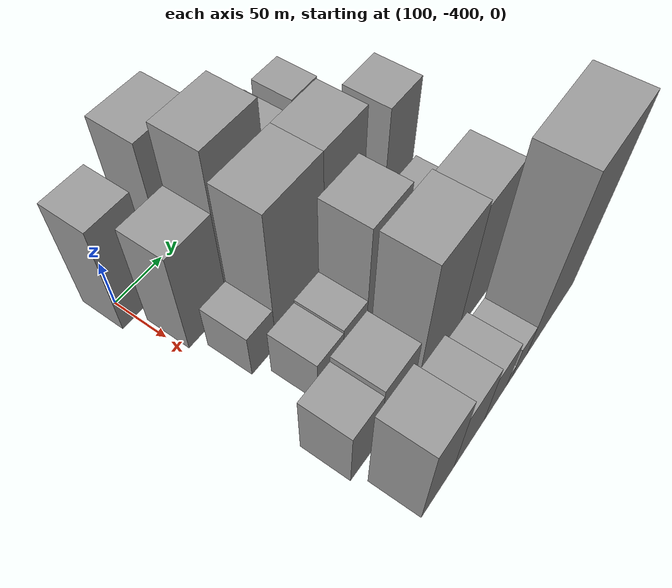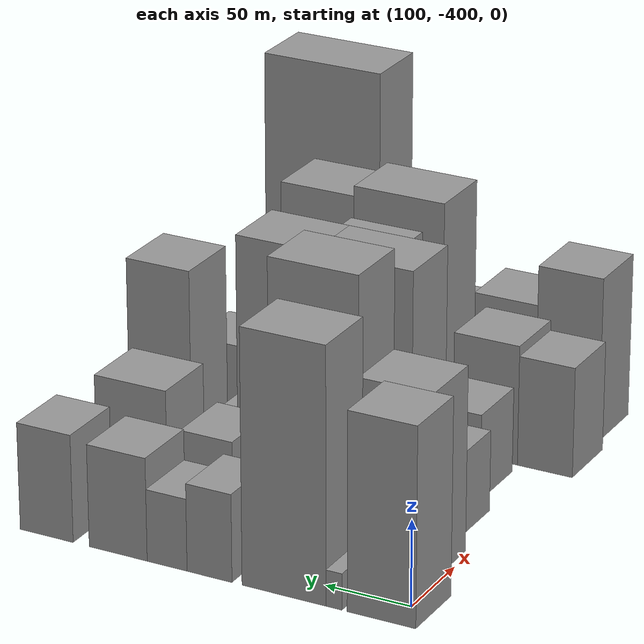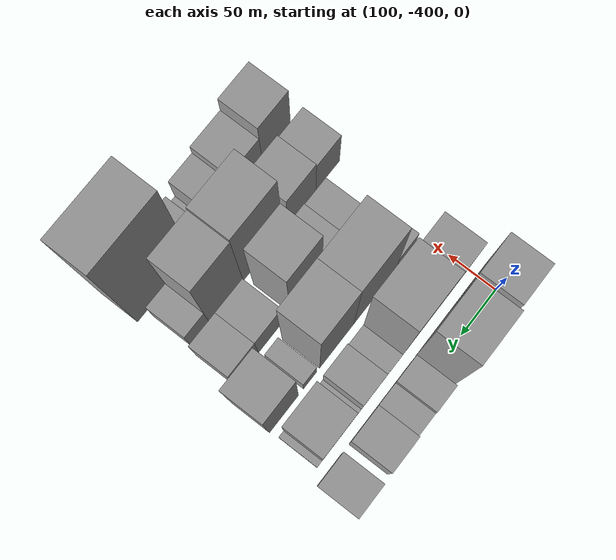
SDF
<sdf version="1.6">
 <world name="default">
  <model name="building_10">
   <static>1</static>
   <pose>100.0000 -393.0205 0 0.000000 0.000000 0.000000</pose>
   <link name="link">
    <pose>0 0 57.00 0 0 0</pose>
    <collision name="collision"><geometry><box><size>40.0000 39.4677 114.0000</size></box></geometry></collision>
    <visual name="visual">
     <cast_shadows>0</cast_shadows>
     <geometry><box><size>40.0000 39.4677 114.0000</size></box></geometry>
     <material>
      <script>
       <uri>model://grey_wall/materials/scripts</uri>
       <uri>model://grey_wall/materials/textures</uri>
       <name>vrc/grey_wall</name>
      </script>
     </material>
    </visual>
   </link>
  </model>
  <model name="building_11">
   <static>1</static>
   <pose>100.0000 -365.6072 0 0.000000 0.000000 0.000000</pose>
   <link name="link">
    <pose>0 0 10.50 0 0 0</pose>
    <collision name="collision"><geometry><box><size>40.0000 9.3589 21.0000</size></box></geometry></collision>
    <visual name="visual">
     <cast_shadows>0</cast_shadows>
     <geometry><box><size>40.0000 9.3589 21.0000</size></box></geometry>
     <material>
      <script>
       <uri>model://grey_wall/materials/scripts</uri>
       <uri>model://grey_wall/materials/textures</uri>
       <name>vrc/grey_wall</name>
      </script>
     </material>
    </visual>
   </link>
  </model>
  <model name="building_12">
   <static>1</static>
   <pose>100.0000 -336.2007 0 0.000000 0.000000 0.000000</pose>
   <link name="link">
    <pose>0 0 73.50 0 0 0</pose>
    <collision name="collision"><geometry><box><size>40.0000 49.4543 147.0000</size></box></geometry></collision>
    <visual name="visual">
     <cast_shadows>0</cast_shadows>
     <geometry><box><size>40.0000 49.4543 147.0000</size></box></geometry>
     <material>
      <script>
       <uri>model://grey_wall/materials/scripts</uri>
       <uri>model://grey_wall/materials/textures</uri>
       <name>vrc/grey_wall</name>
      </script>
     </material>
    </visual>
   </link>
  </model>
  <model name="building_13">
   <static>1</static>
   <pose>100.0000 -291.9677 0 0.000000 0.000000 0.000000</pose>
   <link name="link">
    <pose>0 0 25.50 0 0 0</pose>
    <collision name="collision"><geometry><box><size>40.0000 27.0116 51.0000</size></box></geometry></collision>
    <visual name="visual">
     <cast_shadows>0</cast_shadows>
     <geometry><box><size>40.0000 27.0116 51.0000</size></box></geometry>
     <material>
      <script>
       <uri>model://grey_wall/materials/scripts</uri>
       <uri>model://grey_wall/materials/textures</uri>
       <name>vrc/grey_wall</name>
      </script>
     </material>
    </visual>
   </link>
  </model>
  <model name="building_14">
   <static>1</static>
   <pose>100.0000 -266.3513 0 0.000000 0.000000 0.000000</pose>
   <link name="link">
    <pose>0 0 21.00 0 0 0</pose>
    <collision name="collision"><geometry><box><size>40.0000 24.2213 42.0000</size></box></geometry></collision>
    <visual name="visual">
     <cast_shadows>0</cast_shadows>
     <geometry><box><size>40.0000 24.2213 42.0000</size></box></geometry>
     <material>
      <script>
       <uri>model://grey_wall/materials/scripts</uri>
       <uri>model://grey_wall/materials/textures</uri>
       <name>vrc/grey_wall</name>
      </script>
     </material>
    </visual>
   </link>
  </model>
  <model name="building_15">
   <static>1</static>
   <pose>100.0000 -236.4188 0 0.000000 0.000000 0.000000</pose>
   <link name="link">
    <pose>0 0 30.00 0 0 0</pose>
    <collision name="collision"><geometry><box><size>40.0000 35.6436 60.0000</size></box></geometry></collision>
    <visual name="visual">
     <cast_shadows>0</cast_shadows>
     <geometry><box><size>40.0000 35.6436 60.0000</size></box></geometry>
     <material>
      <script>
       <uri>model://grey_wall/materials/scripts</uri>
       <uri>model://grey_wall/materials/textures</uri>
       <name>vrc/grey_wall</name>
      </script>
     </material>
    </visual>
   </link>
  </model>
  <model name="building_16">
   <static>1</static>
   <pose>100.0000 -192.0225 0 0.000000 0.000000 0.000000</pose>
   <link name="link">
    <pose>0 0 31.50 0 0 0</pose>
    <collision name="collision"><geometry><box><size>40.0000 33.1490 63.0000</size></box></geometry></collision>
    <visual name="visual">
     <cast_shadows>0</cast_shadows>
     <geometry><box><size>40.0000 33.1490 63.0000</size></box></geometry>
     <material>
      <script>
       <uri>model://grey_wall/materials/scripts</uri>
       <uri>model://grey_wall/materials/textures</uri>
       <name>vrc/grey_wall</name>
      </script>
     </material>
    </visual>
   </link>
  </model>
  <model name="building_55">
   <static>1</static>
   <pose>149.0000 -375.3087 0 0.000000 0.000000 0.000000</pose>
   <link name="link">
    <pose>0 0 54.00 0 0 0</pose>
    <collision name="collision"><geometry><box><size>40.0000 43.1898 108.0000</size></box></geometry></collision>
    <visual name="visual">
     <cast_shadows>0</cast_shadows>
     <geometry><box><size>40.0000 43.1898 108.0000</size></box></geometry>
     <material>
      <script>
       <uri>model://grey_wall/materials/scripts</uri>
       <uri>model://grey_wall/materials/textures</uri>
       <name>vrc/grey_wall</name>
      </script>
     </material>
    </visual>
   </link>
  </model>
  <model name="building_56">
   <static>1</static>
   <pose>149.0000 -327.1030 0 0.000000 0.000000 0.000000</pose>
   <link name="link">
    <pose>0 0 82.50 0 0 0</pose>
    <collision name="collision"><geometry><box><size>40.0000 53.2216 165.0000</size></box></geometry></collision>
    <visual name="visual">
     <cast_shadows>0</cast_shadows>
     <geometry><box><size>40.0000 53.2216 165.0000</size></box></geometry>
     <material>
      <script>
       <uri>model://grey_wall/materials/scripts</uri>
       <uri>model://grey_wall/materials/textures</uri>
       <name>vrc/grey_wall</name>
      </script>
     </material>
    </visual>
   </link>
  </model>
  <model name="building_57">
   <static>1</static>
   <pose>149.0000 -289.4607 0 0.000000 0.000000 0.000000</pose>
   <link name="link">
    <pose>0 0 19.50 0 0 0</pose>
    <collision name="collision"><geometry><box><size>40.0000 22.0631 39.0000</size></box></geometry></collision>
    <visual name="visual">
     <cast_shadows>0</cast_shadows>
     <geometry><box><size>40.0000 22.0631 39.0000</size></box></geometry>
     <material>
      <script>
       <uri>model://grey_wall/materials/scripts</uri>
       <uri>model://grey_wall/materials/textures</uri>
       <name>vrc/grey_wall</name>
      </script>
     </material>
    </visual>
   </link>
  </model>
  <model name="building_58">
   <static>1</static>
   <pose>149.0000 -262.5375 0 0.000000 0.000000 0.000000</pose>
   <link name="link">
    <pose>0 0 27.00 0 0 0</pose>
    <collision name="collision"><geometry><box><size>40.0000 31.7833 54.0000</size></box></geometry></collision>
    <visual name="visual">
     <cast_shadows>0</cast_shadows>
     <geometry><box><size>40.0000 31.7833 54.0000</size></box></geometry>
     <material>
      <script>
       <uri>model://grey_wall/materials/scripts</uri>
       <uri>model://grey_wall/materials/textures</uri>
       <name>vrc/grey_wall</name>
      </script>
     </material>
    </visual>
   </link>
  </model>
  <model name="building_59">
   <static>1</static>
   <pose>149.0000 -242.3746 0 0.000000 0.000000 0.000000</pose>
   <link name="link">
    <pose>0 0 9.00 0 0 0</pose>
    <collision name="collision"><geometry><box><size>40.0000 8.5425 18.0000</size></box></geometry></collision>
    <visual name="visual">
     <cast_shadows>0</cast_shadows>
     <geometry><box><size>40.0000 8.5425 18.0000</size></box></geometry>
     <material>
      <script>
       <uri>model://grey_wall/materials/scripts</uri>
       <uri>model://grey_wall/materials/textures</uri>
       <name>vrc/grey_wall</name>
      </script>
     </material>
    </visual>
   </link>
  </model>
  <model name="building_60">
   <static>1</static>
   <pose>149.0000 -215.9999 0 0.000000 0.000000 0.000000</pose>
   <link name="link">
    <pose>0 0 37.50 0 0 0</pose>
    <collision name="collision"><geometry><box><size>40.0000 44.2071 75.0000</size></box></geometry></collision>
    <visual name="visual">
     <cast_shadows>0</cast_shadows>
     <geometry><box><size>40.0000 44.2071 75.0000</size></box></geometry>
     <material>
      <script>
       <uri>model://grey_wall/materials/scripts</uri>
       <uri>model://grey_wall/materials/textures</uri>
       <name>vrc/grey_wall</name>
      </script>
     </material>
    </visual>
   </link>
  </model>
  <model name="building_61">
   <static>1</static>
   <pose>149.0000 -190.4918 0 0.000000 0.000000 0.000000</pose>
   <link name="link">
    <pose>0 0 7.50 0 0 0</pose>
    <collision name="collision"><geometry><box><size>40.0000 6.8092 15.0000</size></box></geometry></collision>
    <visual name="visual">
     <cast_shadows>0</cast_shadows>
     <geometry><box><size>40.0000 6.8092 15.0000</size></box></geometry>
     <material>
      <script>
       <uri>model://grey_wall/materials/scripts</uri>
       <uri>model://grey_wall/materials/textures</uri>
       <name>vrc/grey_wall</name>
      </script>
     </material>
    </visual>
   </link>
  </model>
  <model name="building_99">
   <static>1</static>
   <pose>198.0000 -373.5648 0 0.000000 0.000000 0.000000</pose>
   <link name="link">
    <pose>0 0 24.00 0 0 0</pose>
    <collision name="collision"><geometry><box><size>40.0000 27.1789 48.0000</size></box></geometry></collision>
    <visual name="visual">
     <cast_shadows>0</cast_shadows>
     <geometry><box><size>40.0000 27.1789 48.0000</size></box></geometry>
     <material>
      <script>
       <uri>model://grey_wall/materials/scripts</uri>
       <uri>model://grey_wall/materials/textures</uri>
       <name>vrc/grey_wall</name>
      </script>
     </material>
    </visual>
   </link>
  </model>
  <model name="building_100">
   <static>1</static>
   <pose>198.0000 -330.6645 0 0.000000 0.000000 0.000000</pose>
   <link name="link">
    <pose>0 0 75.00 0 0 0</pose>
    <collision name="collision"><geometry><box><size>40.0000 58.6218 150.0000</size></box></geometry></collision>
    <visual name="visual">
     <cast_shadows>0</cast_shadows>
     <geometry><box><size>40.0000 58.6218 150.0000</size></box></geometry>
     <material>
      <script>
       <uri>model://grey_wall/materials/scripts</uri>
       <uri>model://grey_wall/materials/textures</uri>
       <name>vrc/grey_wall</name>
      </script>
     </material>
    </visual>
   </link>
  </model>
  <model name="building_101">
   <static>1</static>
   <pose>198.0000 -277.6675 0 0.000000 0.000000 0.000000</pose>
   <link name="link">
    <pose>0 0 75.00 0 0 0</pose>
    <collision name="collision"><geometry><box><size>40.0000 47.3722 150.0000</size></box></geometry></collision>
    <visual name="visual">
     <cast_shadows>0</cast_shadows>
     <geometry><box><size>40.0000 47.3722 150.0000</size></box></geometry>
     <material>
      <script>
       <uri>model://grey_wall/materials/scripts</uri>
       <uri>model://grey_wall/materials/textures</uri>
       <name>vrc/grey_wall</name>
      </script>
     </material>
    </visual>
   </link>
  </model>
  <model name="building_102">
   <static>1</static>
   <pose>198.0000 -240.9168 0 0.000000 0.000000 0.000000</pose>
   <link name="link">
    <pose>0 0 18.00 0 0 0</pose>
    <collision name="collision"><geometry><box><size>40.0000 18.1293 36.0000</size></box></geometry></collision>
    <visual name="visual">
     <cast_shadows>0</cast_shadows>
     <geometry><box><size>40.0000 18.1293 36.0000</size></box></geometry>
     <material>
      <script>
       <uri>model://grey_wall/materials/scripts</uri>
       <uri>model://grey_wall/materials/textures</uri>
       <name>vrc/grey_wall</name>
      </script>
     </material>
    </visual>
   </link>
  </model>
  <model name="building_103">
   <static>1</static>
   <pose>198.0000 -205.2242 0 0.000000 0.000000 0.000000</pose>
   <link name="link">
    <pose>0 0 61.50 0 0 0</pose>
    <collision name="collision"><geometry><box><size>40.0000 39.2560 123.0000</size></box></geometry></collision>
    <visual name="visual">
     <cast_shadows>0</cast_shadows>
     <geometry><box><size>40.0000 39.2560 123.0000</size></box></geometry>
     <material>
      <script>
       <uri>model://grey_wall/materials/scripts</uri>
       <uri>model://grey_wall/materials/textures</uri>
       <name>vrc/grey_wall</name>
      </script>
     </material>
    </visual>
   </link>
  </model>
  <model name="building_145">
   <static>1</static>
   <pose>247.0000 -362.6014 0 0.000000 0.000000 0.000000</pose>
   <link name="link">
    <pose>0 0 25.50 0 0 0</pose>
    <collision name="collision"><geometry><box><size>40.0000 29.0980 51.0000</size></box></geometry></collision>
    <visual name="visual">
     <cast_shadows>0</cast_shadows>
     <geometry><box><size>40.0000 29.0980 51.0000</size></box></geometry>
     <material>
      <script>
       <uri>model://grey_wall/materials/scripts</uri>
       <uri>model://grey_wall/materials/textures</uri>
       <name>vrc/grey_wall</name>
      </script>
     </material>
    </visual>
   </link>
  </model>
  <model name="building_146">
   <static>1</static>
   <pose>247.0000 -334.2558 0 0.000000 0.000000 0.000000</pose>
   <link name="link">
    <pose>0 0 27.00 0 0 0</pose>
    <collision name="collision"><geometry><box><size>40.0000 27.5932 54.0000</size></box></geometry></collision>
    <visual name="visual">
     <cast_shadows>0</cast_shadows>
     <geometry><box><size>40.0000 27.5932 54.0000</size></box></geometry>
     <material>
      <script>
       <uri>model://grey_wall/materials/scripts</uri>
       <uri>model://grey_wall/materials/textures</uri>
       <name>vrc/grey_wall</name>
      </script>
     </material>
    </visual>
   </link>
  </model>
  <model name="building_147">
   <static>1</static>
   <pose>247.0000 -298.5102 0 0.000000 0.000000 0.000000</pose>
   <link name="link">
    <pose>0 0 66.00 0 0 0</pose>
    <collision name="collision"><geometry><box><size>40.0000 43.8980 132.0000</size></box></geometry></collision>
    <visual name="visual">
     <cast_shadows>0</cast_shadows>
     <geometry><box><size>40.0000 43.8980 132.0000</size></box></geometry>
     <material>
      <script>
       <uri>model://grey_wall/materials/scripts</uri>
       <uri>model://grey_wall/materials/textures</uri>
       <name>vrc/grey_wall</name>
      </script>
     </material>
    </visual>
   </link>
  </model>
  <model name="building_148">
   <static>1</static>
   <pose>247.0000 -250.0658 0 0.000000 0.000000 0.000000</pose>
   <link name="link">
    <pose>0 0 30.00 0 0 0</pose>
    <collision name="collision"><geometry><box><size>40.0000 34.9907 60.0000</size></box></geometry></collision>
    <visual name="visual">
     <cast_shadows>0</cast_shadows>
     <geometry><box><size>40.0000 34.9907 60.0000</size></box></geometry>
     <material>
      <script>
       <uri>model://grey_wall/materials/scripts</uri>
       <uri>model://grey_wall/materials/textures</uri>
       <name>vrc/grey_wall</name>
      </script>
     </material>
    </visual>
   </link>
  </model>
  <model name="building_149">
   <static>1</static>
   <pose>247.0000 -215.6099 0 0.000000 0.000000 0.000000</pose>
   <link name="link">
    <pose>0 0 30.00 0 0 0</pose>
    <collision name="collision"><geometry><box><size>40.0000 33.9211 60.0000</size></box></geometry></collision>
    <visual name="visual">
     <cast_shadows>0</cast_shadows>
     <geometry><box><size>40.0000 33.9211 60.0000</size></box></geometry>
     <material>
      <script>
       <uri>model://grey_wall/materials/scripts</uri>
       <uri>model://grey_wall/materials/textures</uri>
       <name>vrc/grey_wall</name>
      </script>
     </material>
    </visual>
   </link>
  </model>
  <model name="building_194">
   <static>1</static>
   <pose>296.0000 -392.7342 0 0.000000 0.000000 0.000000</pose>
   <link name="link">
    <pose>0 0 33.00 0 0 0</pose>
    <collision name="collision"><geometry><box><size>40.0000 33.5156 66.0000</size></box></geometry></collision>
    <visual name="visual">
     <cast_shadows>0</cast_shadows>
     <geometry><box><size>40.0000 33.5156 66.0000</size></box></geometry>
     <material>
      <script>
       <uri>model://grey_wall/materials/scripts</uri>
       <uri>model://grey_wall/materials/textures</uri>
       <name>vrc/grey_wall</name>
      </script>
     </material>
    </visual>
   </link>
  </model>
  <model name="building_195">
   <static>1</static>
   <pose>296.0000 -356.0504 0 0.000000 0.000000 0.000000</pose>
   <link name="link">
    <pose>0 0 36.00 0 0 0</pose>
    <collision name="collision"><geometry><box><size>40.0000 39.8519 72.0000</size></box></geometry></collision>
    <visual name="visual">
     <cast_shadows>0</cast_shadows>
     <geometry><box><size>40.0000 39.8519 72.0000</size></box></geometry>
     <material>
      <script>
       <uri>model://grey_wall/materials/scripts</uri>
       <uri>model://grey_wall/materials/textures</uri>
       <name>vrc/grey_wall</name>
      </script>
     </material>
    </visual>
   </link>
  </model>
  <model name="building_196">
   <static>1</static>
   <pose>296.0000 -301.2869 0 0.000000 0.000000 0.000000</pose>
   <link name="link">
    <pose>0 0 73.50 0 0 0</pose>
    <collision name="collision"><geometry><box><size>40.0000 55.6752 147.0000</size></box></geometry></collision>
    <visual name="visual">
     <cast_shadows>0</cast_shadows>
     <geometry><box><size>40.0000 55.6752 147.0000</size></box></geometry>
     <material>
      <script>
       <uri>model://grey_wall/materials/scripts</uri>
       <uri>model://grey_wall/materials/textures</uri>
       <name>vrc/grey_wall</name>
      </script>
     </material>
    </visual>
   </link>
  </model>
  <model name="building_197">
   <static>1</static>
   <pose>296.0000 -250.4628 0 0.000000 0.000000 0.000000</pose>
   <link name="link">
    <pose>0 0 70.50 0 0 0</pose>
    <collision name="collision"><geometry><box><size>40.0000 45.9731 141.0000</size></box></geometry></collision>
    <visual name="visual">
     <cast_shadows>0</cast_shadows>
     <geometry><box><size>40.0000 45.9731 141.0000</size></box></geometry>
     <material>
      <script>
       <uri>model://grey_wall/materials/scripts</uri>
       <uri>model://grey_wall/materials/textures</uri>
       <name>vrc/grey_wall</name>
      </script>
     </material>
    </visual>
   </link>
  </model>
  <model name="building_198">
   <static>1</static>
   <pose>296.0000 -214.9254 0 0.000000 0.000000 0.000000</pose>
   <link name="link">
    <pose>0 0 24.00 0 0 0</pose>
    <collision name="collision"><geometry><box><size>40.0000 25.1018 48.0000</size></box></geometry></collision>
    <visual name="visual">
     <cast_shadows>0</cast_shadows>
     <geometry><box><size>40.0000 25.1018 48.0000</size></box></geometry>
     <material>
      <script>
       <uri>model://grey_wall/materials/scripts</uri>
       <uri>model://grey_wall/materials/textures</uri>
       <name>vrc/grey_wall</name>
      </script>
     </material>
    </visual>
   </link>
  </model>
  <model name="building_245">
   <static>1</static>
   <pose>345.0000 -383.4216 0 0.000000 0.000000 0.000000</pose>
   <link name="link">
    <pose>0 0 49.50 0 0 0</pose>
    <collision name="collision"><geometry><box><size>40.0000 39.4802 99.0000</size></box></geometry></collision>
    <visual name="visual">
     <cast_shadows>0</cast_shadows>
     <geometry><box><size>40.0000 39.4802 99.0000</size></box></geometry>
     <material>
      <script>
       <uri>model://grey_wall/materials/scripts</uri>
       <uri>model://grey_wall/materials/textures</uri>
       <name>vrc/grey_wall</name>
      </script>
     </material>
    </visual>
   </link>
  </model>
  <model name="building_246">
   <static>1</static>
   <pose>345.0000 -344.0782 0 0.000000 0.000000 0.000000</pose>
   <link name="link">
    <pose>0 0 37.50 0 0 0</pose>
    <collision name="collision"><geometry><box><size>40.0000 39.2066 75.0000</size></box></geometry></collision>
    <visual name="visual">
     <cast_shadows>0</cast_shadows>
     <geometry><box><size>40.0000 39.2066 75.0000</size></box></geometry>
     <material>
      <script>
       <uri>model://grey_wall/materials/scripts</uri>
       <uri>model://grey_wall/materials/textures</uri>
       <name>vrc/grey_wall</name>
      </script>
     </material>
    </visual>
   </link>
  </model>
  <model name="building_247">
   <static>1</static>
   <pose>345.0000 -309.0054 0 0.000000 0.000000 0.000000</pose>
   <link name="link">
    <pose>0 0 30.00 0 0 0</pose>
    <collision name="collision"><geometry><box><size>40.0000 30.9390 60.0000</size></box></geometry></collision>
    <visual name="visual">
     <cast_shadows>0</cast_shadows>
     <geometry><box><size>40.0000 30.9390 60.0000</size></box></geometry>
     <material>
      <script>
       <uri>model://grey_wall/materials/scripts</uri>
       <uri>model://grey_wall/materials/textures</uri>
       <name>vrc/grey_wall</name>
      </script>
     </material>
    </visual>
   </link>
  </model>
  <model name="building_248">
   <static>1</static>
   <pose>345.0000 -289.4687 0 0.000000 0.000000 0.000000</pose>
   <link name="link">
    <pose>0 0 9.00 0 0 0</pose>
    <collision name="collision"><geometry><box><size>40.0000 8.1343 18.0000</size></box></geometry></collision>
    <visual name="visual">
     <cast_shadows>0</cast_shadows>
     <geometry><box><size>40.0000 8.1343 18.0000</size></box></geometry>
     <material>
      <script>
       <uri>model://grey_wall/materials/scripts</uri>
       <uri>model://grey_wall/materials/textures</uri>
       <name>vrc/grey_wall</name>
      </script>
     </material>
    </visual>
   </link>
  </model>
  <model name="building_249">
   <static>1</static>
   <pose>345.0000 -274.7065 0 0.000000 0.000000 0.000000</pose>
   <link name="link">
    <pose>0 0 19.50 0 0 0</pose>
    <collision name="collision"><geometry><box><size>40.0000 21.3902 39.0000</size></box></geometry></collision>
    <visual name="visual">
     <cast_shadows>0</cast_shadows>
     <geometry><box><size>40.0000 21.3902 39.0000</size></box></geometry>
     <material>
      <script>
       <uri>model://grey_wall/materials/scripts</uri>
       <uri>model://grey_wall/materials/textures</uri>
       <name>vrc/grey_wall</name>
      </script>
     </material>
    </visual>
   </link>
  </model>
  <model name="building_250">
   <static>1</static>
   <pose>345.0000 -227.1670 0 0.000000 0.000000 0.000000</pose>
   <link name="link">
    <pose>0 0 97.50 0 0 0</pose>
    <collision name="collision"><geometry><box><size>40.0000 73.6888 195.0000</size></box></geometry></collision>
    <visual name="visual">
     <cast_shadows>0</cast_shadows>
     <geometry><box><size>40.0000 73.6888 195.0000</size></box></geometry>
     <material>
      <script>
       <uri>model://grey_wall/materials/scripts</uri>
       <uri>model://grey_wall/materials/textures</uri>
       <name>vrc/grey_wall</name>
      </script>
     </material>
    </visual>
   </link>
  </model>
 </world>
</sdf>
